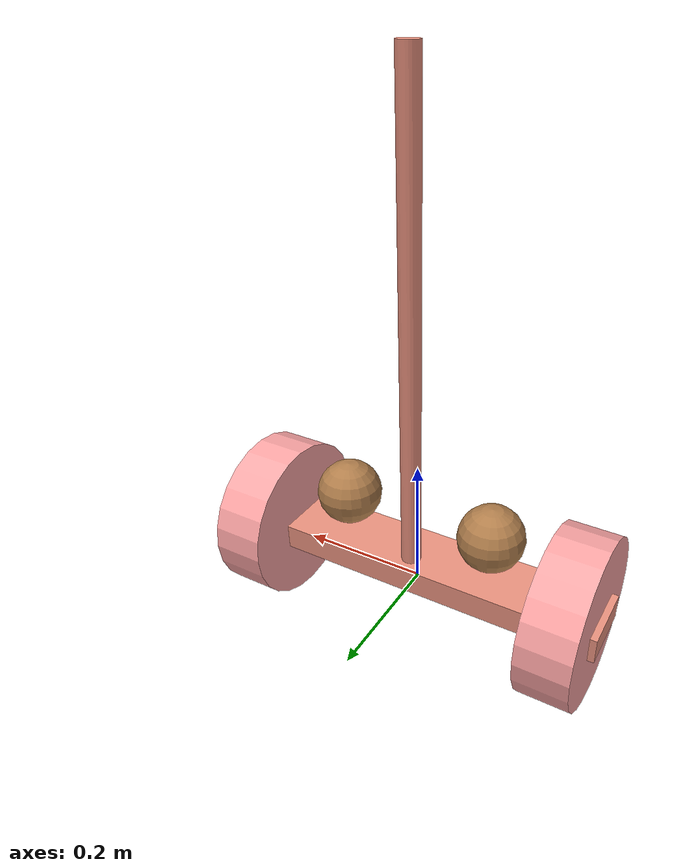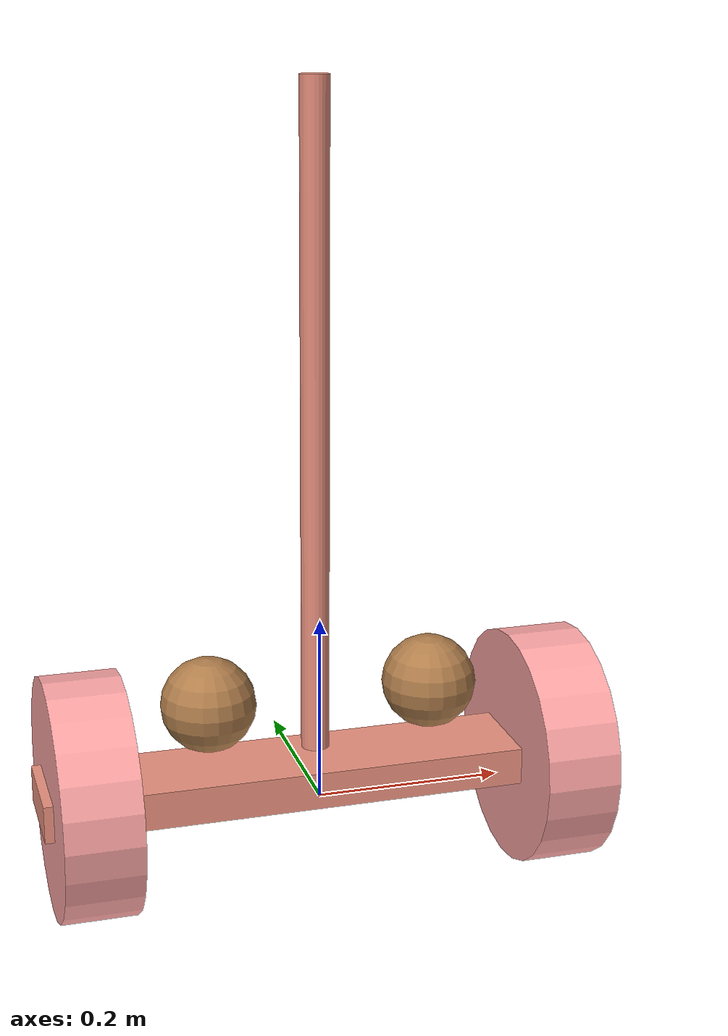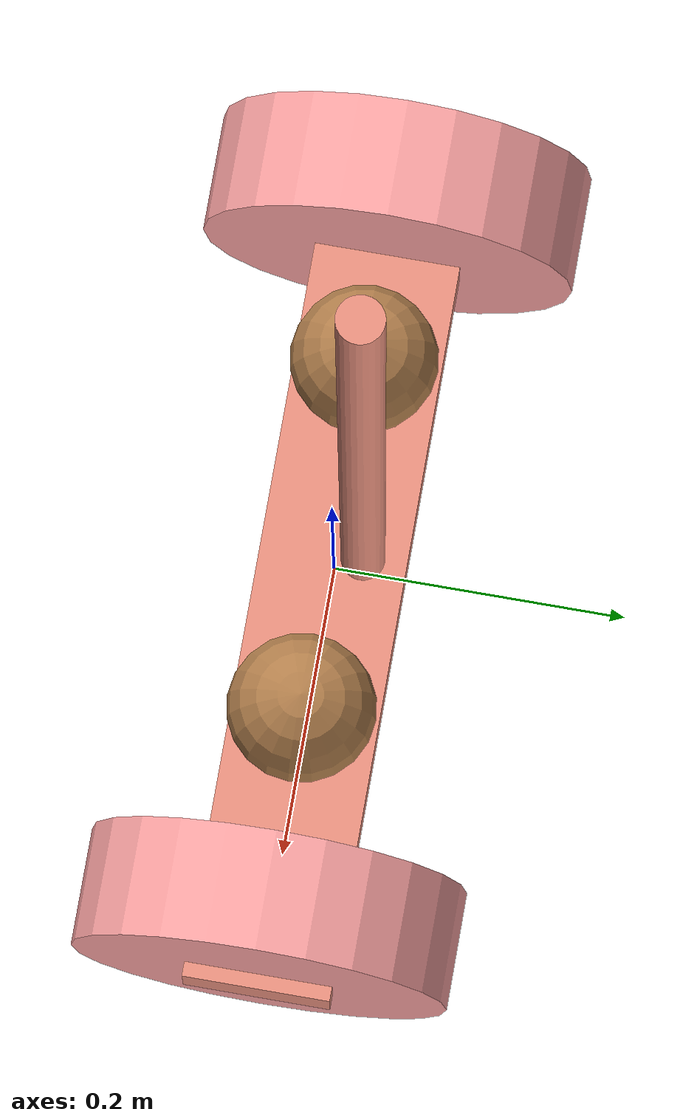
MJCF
<mujoco model="balance">
    <compiler angle="radian"/>
    <size njmax="500" nconmax="100"/>

    <asset>
        <texture type="2d" name="wheel_texture" builtin="checker" mark="edge"
                 rgb1="1 1 1" rgb2="1 0.3 0.3"
                 markrgb="0.3 0.3 0.3" width="1024" height="1024"/>
        <material name="wheel_material" texture="wheel_texture" texuniform="true" texrepeat="20 20"/>
        <texture type="2d" name="body_texture" builtin="gradient" rgb1="0.9 0.3 0.5"
                 rgb2="0.95 0.85 0.5" width="512" height="512"/>
        <material name="body_material" texture="body_texture" texrepeat="4 2" shininess="0.3"/>
        <!-- 添加脚部材质，避免未定义错误 -->
        <material name="foot_material" rgba="0.7 0.5 0.3 1" shininess="0.4"/>
    </asset>

    <option gravity="0 0 -9.81" viscosity="0.002"/>

    <worldbody>
        <body name="robot_body">
            <joint name="robot_body_joint" type="free"/>

            <!-- 轮轴杆：加厚、加重，降低重心 -->
            <body name="wheel_axle" pos="0 0 0.03">
                <geom type="box" size="0.3 0.05 0.02" material="body_material"/>
                <inertial pos="0.0 0.0 0.0" quat="0.707107 0 0 0.707107"
                          mass="1.0" diaginertia="0.002 0.002 0.0005"/>

                <!-- 左脚（前）球体，质量25kg -->
                <body name="left_foot" pos="-0.12 0 0.09">
                    <geom type="sphere" size="0.05" material="foot_material"/>
                    <inertial pos="0 0 0" mass="30.0" diaginertia="0.025 0.025 0.025"/>
                </body>

                <!-- 右脚（后）球体，质量25kg -->
                <body name="right_foot" pos="0.12 0 0.09">
                    <geom type="sphere" size="0.05" material="foot_material"/>
                    <inertial pos="0 0 0" mass="30.0" diaginertia="0.025 0.025 0.025"/>
                </body>
            </body>

            <!-- 倒立杆 -->
            <body name="pendulum" pos="0 0.02 0.05">
                <geom type="cylinder" size="0.015 0.35" pos="0 0 0.35" material="body_material"/>
                <inertial pos="0.0 0.0 0.0" quat="0.707107 0 0 0.707107"
                          mass="1.5" diaginertia="0.005 0.005 0.002"/>
            </body>

            <!-- 左轮 -->
            <body name="l_wheel" pos="-0.25 0 0.034">
                <inertial pos="0 0 0" quat="0.5 0.5 -0.5 0.5" mass="0.5" diaginertia="0.0005 0.00025 0.00025"/>
                <joint name="torso_l_wheel" type="hinge" pos="0 0 0" axis="-1 0 0" damping="0.2"/>
                <geom type="cylinder" size="0.1275 0.04" quat="0.707107 0 0.707107 0"
                      material="wheel_material" contype="2" conaffinity="1"/>
                <geom type="cylinder" size="0.1275 0.04" quat="0.707107 0 0.707107 0"
                      material="wheel_material"/>
            </body>

            <!-- 右轮 -->
            <body name="r_wheel" pos="0.25 0 0.034">
                <inertial pos="0 0 0" quat="0.5 0.5 -0.5 0.5" mass="0.5" diaginertia="0.0005 0.00025 0.00025"/>
                <joint name="torso_r_wheel" type="hinge" pos="0 0 0" axis="1 0 0" damping="0.2"/>
                <geom type="cylinder" size="0.1275 0.04" quat="0.707107 0 0.707107 0"
                      material="wheel_material" contype="2" conaffinity="1"/>
                <geom type="cylinder" size="0.1275 0.04" quat="0.707107 0 0.707107 0"
                      material="wheel_material"/>
            </body>
        </body>
    </worldbody>

    <actuator>
        <motor name="motor_l_wheel" joint="torso_l_wheel" gear="1" ctrlrange="-15 15" ctrllimited="true"/>
        <motor name="motor_r_wheel" joint="torso_r_wheel" gear="1" ctrlrange="-15 15" ctrllimited="true"/>
    </actuator>
</mujoco>
